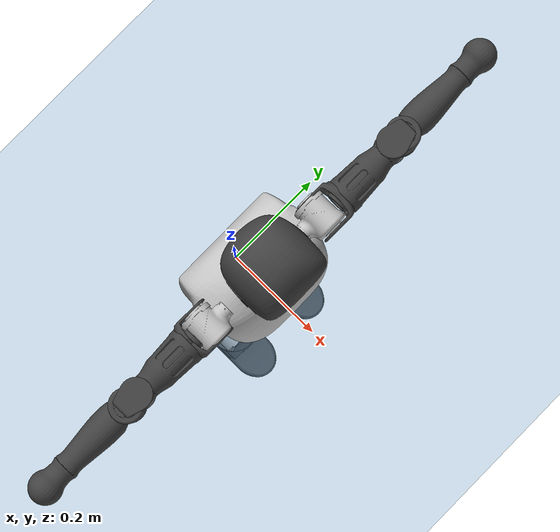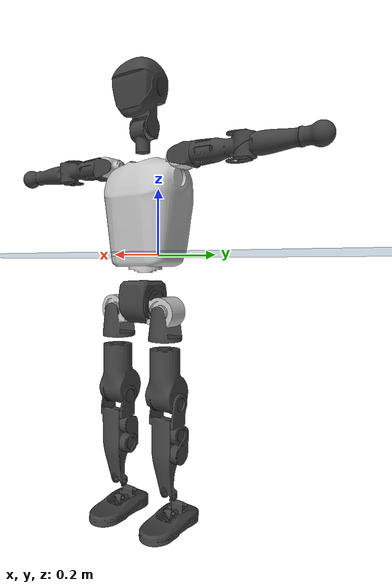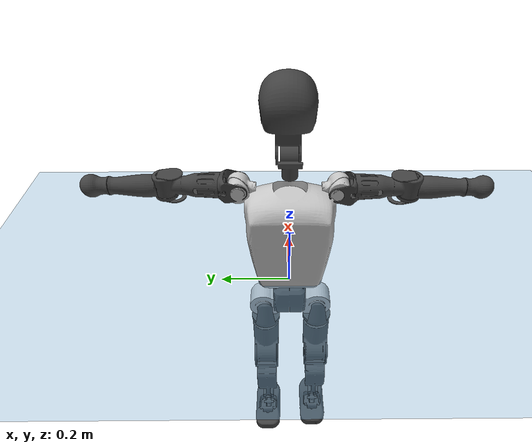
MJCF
<mujoco model="T1">
  <compiler angle="radian" assetdir="assets" balanceinertia="true" inertiafromgeom="false"/>

  <option timestep="0.005" density="1.2" viscosity="2e-05"/>

  <size nkey="1"/>

  <visual>
    <quality shadowsize="8192"/>
    <map shadowclip="0.5"/>
  </visual>

  <default>
    <default class="/">
      <joint armature="0.01" damping="0.01" frictionloss="0.1"/>
      <geom contype="0" conaffinity="0" group="1" solref="-1000 -80"/>
      <site size="0.01 0.005 0.005" group="5"/>
      <general forcelimited="true" biastype="affine" gainprm="25" biasprm="0 -25 -0.6"/>
      <default class="t1">
        <geom rgba="0.25 0.25 0.25 1"/>
        <default class="visual">
          <geom type="mesh" group="2"/>
        </default>
        <default class="collision">
          <geom group="3"/>
        </default>
        <default class="foot">
          <geom size="0.1115 0.05 0.015" type="box" condim="6" group="4" priority="1" solimp="0.015 1 0.015"/>
        </default>
        <default class="reward_collision_sphere">
          <geom group="5" rgba="1 0 0 1"/>
        </default>
      </default>
    </default>
  </default>

  <asset>
    <texture type="skybox" colorspace="auto" name="//unnamed_texture_0" builtin="gradient" rgb1="0.95 0.95 0.95" rgb2="0.95 0.95 0.95" width="100" height="600"/>
    <texture type="2d" colorspace="auto" name="texplane" builtin="checker" rgb1="0.345 0.575 0.748" rgb2="0.345 0.575 0.748" markrgb="1 1 1" width="512" height="512"/>
    <material name="MatPlane" class="/" texture="texplane" texuniform="true" texrepeat="2 2" specular="0.9"/>
    <mesh name="Trunk" class="/" file="Trunk.stl"/>
    <mesh name="H1" class="/" file="H1.stl"/>
    <mesh name="H2" class="/" file="H2.stl"/>
    <mesh name="AL1" class="/" file="AL1.stl"/>
    <mesh name="AL2" class="/" file="AL2.stl"/>
    <mesh name="AL3" class="/" file="AL3.stl"/>
    <mesh name="left_hand_link" class="/" file="left_hand_link.stl"/>
    <mesh name="AR1" class="/" file="AR1.stl"/>
    <mesh name="AR2" class="/" file="AR2.stl"/>
    <mesh name="AR3" class="/" file="AR3.stl"/>
    <mesh name="right_hand_link" class="/" file="right_hand_link.stl"/>
    <mesh name="Waist" class="/" file="Waist.stl"/>
    <mesh name="Hip_Pitch_Left" class="/" file="Hip_Pitch_Left.stl"/>
    <mesh name="Hip_Roll_Left" class="/" file="Hip_Roll_Left.stl"/>
    <mesh name="Hip_Yaw_Left" class="/" file="Hip_Yaw_Left.stl"/>
    <mesh name="Shank_Left" class="/" file="Shank_Left.stl"/>
    <mesh name="Ankle_Cross_Left" class="/" file="Ankle_Cross_Left.stl"/>
    <mesh name="left_foot_link" class="/" file="left_foot_link.stl"/>
    <mesh name="Hip_Pitch_Right" class="/" file="Hip_Pitch_Right.stl"/>
    <mesh name="Hip_Roll_Right" class="/" file="Hip_Roll_Right.stl"/>
    <mesh name="Hip_Yaw_Right" class="/" file="Hip_Yaw_Right.stl"/>
    <mesh name="Shank_Right" class="/" file="Shank_Right.stl"/>
    <mesh name="Ankle_Cross_Right" class="/" file="Ankle_Cross_Right.stl"/>
    <mesh name="right_foot_link" class="/" file="right_foot_link.stl"/>
  </asset>

  <worldbody>
    <geom name="floor" class="/" size="100 100 0.125" type="plane" group="0" material="MatPlane"/>
    <light name="toplight_shadow" class="/" pos="0 0 5" dir="0.0990148 0.0990148 -0.990148" type="directional" ambient="0.04 0.04 0.04" diffuse="0.55 0.55 0.55" specular="0.12 0.12 0.12"/>
    <light name="toplight_fill" class="/" pos="0 0 5" dir="0.0990148 0.0990148 -0.990148" type="directional" castshadow="false" ambient="0.04 0.04 0.04" diffuse="0.3 0.3 0.3" specular="0.08 0.08 0.08"/>
    <body name="trunk" childclass="t1" pos="0.000219533 -0.00148609 0.000931738" quat="1 -0.000115674 9.9266e-05 0.000185456">
      <inertial pos="0.0654595 -0.00246502 0.126693" quat="0.999964 0.00206635 -0.00819324 0.000833135" mass="14.4308" diaginertia="0.199295 0.0289502 0.13404"/>
      <joint name="//unnamed_joint_0" type="free" armature="0" damping="0" frictionloss="0"/>
      <geom name="//unnamed_geom_1" class="visual" rgba="0.76 0.76 0.76 1" mesh="Trunk"/>
      <geom name="//unnamed_geom_2" class="collision" size="0.0803605 0.107147 0.160721" pos="0.0712765 0 0.144229" type="box"/>
      <geom name="//unnamed_geom_3" class="reward_collision_sphere" size="0.123219" pos="0.0712765 0 0.120191"/>
      <geom name="//unnamed_geom_4" class="reward_collision_sphere" size="0.0160721" pos="0.0712765 0.0700884 0"/>
      <geom name="//unnamed_geom_5" class="reward_collision_sphere" size="0.0160721" pos="0.0712765 -0.0700884 0"/>
      <geom name="//unnamed_geom_6" class="reward_collision_sphere" size="0.0160721" pos="0.0712765 0.0882289 0.216344"/>
      <geom name="//unnamed_geom_7" class="reward_collision_sphere" size="0.0160721" pos="0.0712765 -0.0882289 0.216344"/>
      <site name="imu" pos="-0.00102103 -0.000327135 0.000409942" size="0.0107147"/>
      <camera name="track" pos="0 -1.64914 0" quat="0.707107 0.707107 0 0" mode="trackcom"/>
      <camera name="ego_camera" pos="0.144929 0 0.504802" quat="-0.5 -0.5 0.5 0.5"/>
      <body name="H1" pos="0.0749927 0.000382703 0.295107" quat="1 0.000407537 0.000107596 -0.000437588">
        <inertial pos="-0.00129463 -0.0030731 0.0689128" quat="0.765598 -0.0121139 0.000259738 0.643205" mass="0.556988" diaginertia="0.000564789 8.78493e-05 0.000379249"/>
        <joint name="AAHead_yaw" pos="0 0 0" axis="0.00495661 -0.011401 0.999923" range="-1.57254 1.58068" armature="0.00910074" damping="0.0110858" frictionloss="0.0940051"/>
        <geom name="//unnamed_geom_8" class="visual" mesh="H1"/>
        <body name="H2" pos="-0.00277053 0.00479583 0.0715791" quat="0.999999 0.000600668 -0.000101685 -0.00102496">
          <inertial pos="0.00773913 0.00237829 0.122482" quat="0.988983 0.105357 -0.0684915 -0.0782454" mass="0.802831" diaginertia="0.00496985 0.00077891 0.00431997"/>
          <joint name="Head_pitch" pos="0 0 0" axis="0.0117581 -0.999929 0.00211154" range="-1.19685 0.304357" armature="0.0111965" damping="0.0196323" frictionloss="0.117476"/>
          <geom name="//unnamed_geom_9" class="visual" mesh="H2"/>
          <geom name="//unnamed_geom_10" class="collision" size="0.0857179" pos="0.0118794 0 0.13221"/>
          <geom name="//unnamed_geom_11" class="reward_collision_sphere" size="0.0964326" pos="0.0237588 0 0.120191"/>
        </body>
      </body>
      <body name="AL1" pos="0.0725438 0.0905475 0.266142" quat="0.999999 0.00162068 0.000116589 0.000476401">
        <inertial pos="-0.00152678 0.0378461 -0.00119699" quat="0.504844 0.494403 -0.505169 0.495482" mass="0.641989" diaginertia="0.00316658 0.000506048 0.000737169"/>
        <joint name="Left_Shoulder_Pitch" pos="0 0 0" axis="-0.000110634 1 -0.000425415" range="-3.32789 1.15193" armature="0.0106472" damping="0.0223421" frictionloss="0.114356"/>
        <geom name="//unnamed_geom_12" class="visual" rgba="0.76 0.76 0.76 1" mesh="AL1"/>
        <body name="AL2" pos="0.00296738 0.0420298 0.00203715" quat="1 -0.000105498 0.000503047 3.69441e-05">
          <inertial pos="0.00278722 0.0285138 -0.00159602" quat="0.484797 0.507456 -0.497402 0.509952" mass="0.1952" diaginertia="0.000956955 0.000137002 0.000440284"/>
          <joint name="Left_Shoulder_Roll" pos="0 0 0" axis="-0.999917 0.00599565 0.0114183" stiffness="0.0209344" range="-1.5424 1.75457" armature="0.00884908" damping="0.00503762" frictionloss="0.108225"/>
          <geom name="//unnamed_geom_13" class="visual" mesh="AL2"/>
          <body name="AL3" pos="0.00314345 0.0508301 0.00148061" quat="0.999999 0.000434282 0.0006873 0.000956023">
            <inertial pos="-0.00219064 0.0733645 0.00181475" quat="0.703675 0.71051 0.0016064 -0.00373731" mass="1.31071" diaginertia="0.0301785 0.00492232 0.00158561"/>
            <joint name="Left_Elbow_Pitch" pos="0 0 0" axis="0.00598675 -0.999952 0.00773136" range="-2.19869 2.22493" armature="0.00805763" damping="0" frictionloss="0.107037"/>
            <geom name="//unnamed_geom_14" class="visual" mesh="AL3"/>
            <geom name="//unnamed_geom_15" class="collision" size="0.0321442 0.0803605" pos="0 0.0412285 0" quat="0.707105 0.707108 0 0" type="cylinder"/>
            <geom name="//unnamed_geom_16" class="reward_collision_sphere" size="0.038573"/>
            <body name="left_hand_link" pos="-0.00214337 0.12422 -3.38757e-05" quat="0.999999 0.00019875 -0.00110046 -0.00129009">
              <inertial pos="0.00359105 0.0925955 0.00130107" quat="0.705096 0.70901 0.0027526 0.0117287" mass="0.406391" diaginertia="0.0198205 0.00317928 0.00052366"/>
              <joint name="Left_Elbow_Yaw" pos="0 0 0" axis="-0.0061229 0.00253428 0.999978" stiffness="0.00200116" range="-2.45085 0.0790194" armature="0.00955187" damping="0.0202258" frictionloss="0.104619"/>
              <geom name="//unnamed_geom_17" class="visual" mesh="left_hand_link"/>
              <geom name="//unnamed_geom_18" class="collision" size="0.0321442 0.0937539" pos="0 0.107194 0" quat="0.707105 0.707108 0 0" type="cylinder"/>
              <geom name="//unnamed_geom_19" class="reward_collision_sphere" size="0.0535737"/>
              <geom name="//unnamed_geom_20" class="reward_collision_sphere" size="0.0375016" pos="0 0.0907026 0"/>
              <geom name="//unnamed_geom_21" class="reward_collision_sphere" size="0.0375016" pos="0 0.177282 0"/>
            </body>
          </body>
        </body>
      </body>
      <body name="AR1" pos="0.0700684 -0.0844051 0.266289" quat="0.999999 -0.00105815 0.00103433 3.60574e-05">
        <inertial pos="-0.00126171 -0.0324637 -0.0023446" quat="0.503654 0.498864 -0.503356 0.494064" mass="0.686236" diaginertia="0.00323202 0.000498973 0.000769345"/>
        <joint name="Right_Shoulder_Pitch" pos="0 0 0" axis="0.00788148 -0.999969 0.000657409" stiffness="0.0207364" range="-1.23543 3.28182" armature="0.00970375" damping="0" frictionloss="0.0980186"/>
        <geom name="//unnamed_geom_22" class="visual" rgba="0.76 0.76 0.76 1" mesh="AR1"/>
        <body name="AR2" pos="-0.00399769 -0.0376213 -0.000758414" quat="0.999999 0.000758362 0.000942829 -2.52665e-05">
          <inertial pos="0.0041939 -0.0306054 -0.00175899" quat="0.513864 0.488872 -0.51629 0.479993" mass="0.203076" diaginertia="0.000948696 0.000127419 0.000428664"/>
          <joint name="Right_Shoulder_Roll" pos="0 0 0" axis="-0.999953 -0.00951431 0.00208186" range="-1.69062 1.62228" armature="0.0103179" damping="0.0153137" frictionloss="0.0821373"/>
          <geom name="//unnamed_geom_23" class="visual" mesh="AR2"/>
          <body name="AR3" pos="0.000577511 -0.0474979 0.00473401" quat="1 5.96806e-05 5.30981e-05 8.52372e-05">
            <inertial pos="0.000425216 -0.0678046 -0.00180428" quat="0.705164 0.70899 -0.00452571 -0.0075604" mass="1.24161" diaginertia="0.0300465 0.00467259 0.00150341"/>
            <joint name="Right_Elbow_Pitch" pos="0 0 0" axis="0.0100373 0.999944 0.00346084" stiffness="0.0010742" range="-2.22736 2.25103" armature="0.0122001" damping="0.0156591" frictionloss="0.109184"/>
            <geom name="//unnamed_geom_24" class="visual" mesh="AR3"/>
            <geom name="//unnamed_geom_25" class="collision" size="0.0321442 0.0803605" pos="0 -0.0412285 0" quat="0.707105 0.707108 0 0" type="cylinder"/>
            <geom name="//unnamed_geom_26" class="reward_collision_sphere" size="0.038573"/>
            <body name="right_hand_link" pos="-0.00149086 -0.122037 -0.00176376" quat="1 8.16442e-05 0.000263548 -0.000530243">
              <inertial pos="0.000963096 -0.0921817 -0.00195525" quat="0.706553 0.707659 0.000791709 0.000344904" mass="0.383232" diaginertia="0.0185688 0.00307325 0.000525966"/>
              <joint name="Right_Elbow_Yaw" pos="0 0 0" axis="-0.000368003 7.26879e-05 1" stiffness="0.00532295" range="-0.0140489 2.4484" armature="0.00951461" damping="0.0265721" frictionloss="0.105105"/>
              <geom name="//unnamed_geom_27" class="visual" mesh="right_hand_link"/>
              <geom name="//unnamed_geom_28" class="collision" size="0.0321442 0.0937539" pos="0 -0.107194 0" quat="0.707105 0.707108 0 0" type="cylinder"/>
              <geom name="//unnamed_geom_29" class="reward_collision_sphere" size="0.0535737"/>
              <geom name="//unnamed_geom_30" class="reward_collision_sphere" size="0.0375016" pos="0 -0.0907026 0"/>
              <geom name="//unnamed_geom_31" class="reward_collision_sphere" size="0.0375016" pos="0 -0.177282 0"/>
            </body>
          </body>
        </body>
      </body>
      <body name="Waist" pos="0.0746151 0.000516265 -0.142538" quat="1 -0.000214827 0.000112024 0.000502011">
        <inertial pos="0.00527226 -0.00290819 0.0113044" quat="0.982899 0.00179681 -0.184009 -0.00685146" mass="3.35811" diaginertia="0.0137578 0.00210355 0.0127023"/>
        <joint name="Waist" pos="0 0 0" axis="-0.0114523 0.000856098 0.999934" range="-1.52443 1.61682" armature="0.0106003" damping="0.0114229" frictionloss="0.0970343"/>
        <geom name="//unnamed_geom_32" class="visual" mesh="Waist"/>
        <body name="Hip_Pitch_Left" pos="0.00131301 0.0850106 -0.00188503" quat="1 -8.83049e-05 0.000670067 -0.0002149">
          <inertial pos="0.000397817 -0.0078756 -0.022886" quat="0.977679 0.209278 0.0184106 0.0026611" mass="1.30001" diaginertia="0.00430092 0.000543525 0.00326024"/>
          <joint name="Left_Hip_Pitch" pos="0 0 0" axis="-0.0129512 0.999712 -0.020228" stiffness="0.0146075" range="-1.82294 1.50003" armature="0.0113688" damping="0.0183671" frictionloss="0.107712"/>
          <geom name="//unnamed_geom_33" class="visual" rgba="0.76 0.76 0.76 1" mesh="Hip_Pitch_Left"/>
          <body name="Hip_Roll_Left" pos="-0.00201606 -0.00516412 -0.0258683" quat="0.999997 0.000656277 0.00165669 -0.00136094">
            <inertial pos="0.00247074 -0.000766102 -0.0623673" quat="0.701949 -0.0162273 -0.00668096 0.712011" mass="0.481518" diaginertia="0.0041913 0.00061042 0.00135087"/>
            <joint name="Left_Hip_Roll" pos="0 0 0" axis="-0.999836 -0.0042702 -0.0175813" range="-1.52781 0.209769" armature="0.00986932" damping="0" frictionloss="0.0941222"/>
            <geom name="//unnamed_geom_34" class="visual" mesh="Hip_Roll_Left"/>
            <geom name="//unnamed_geom_35" class="reward_collision_sphere" size="0.058931"/>
            <body name="Hip_Yaw_Left" pos="0.00283959 0.00188618 -0.100971" quat="1 -4.76388e-05 0.000154804 0.000136976">
              <inertial pos="-0.00784296 0.00257586 -0.106739" quat="0.702838 -0.0203924 -0.0262311 0.710574" mass="2.68202" diaginertia="0.0619307 0.00968753 0.00670635"/>
              <joint name="Left_Hip_Yaw" pos="0 0 0" axis="-0.00508189 0.00160587 -0.999986" range="-0.999659 0.983274" armature="0.0107751" damping="0.0169968" frictionloss="0.114081"/>
              <geom name="//unnamed_geom_36" class="visual" mesh="Hip_Yaw_Left"/>
              <geom name="//unnamed_geom_37" class="collision" size="0.0535737 0.0857179" type="cylinder"/>
              <body name="Shank_Left" pos="-0.018315 0.00225869 -0.160608" quat="1 1.9526e-05 0.000108322 -0.000202685">
                <inertial pos="-0.00895966 0.00123273 -0.150836" quat="0.997266 0.00571919 -0.0287153 0.0678445" mass="2.1798" diaginertia="0.0832485 0.0133506 0.00487001"/>
                <joint name="Left_Knee_Pitch" pos="0 0 0" axis="-0.000911398 0.999999 0.000611572" stiffness="0.00583208" range="0.043449 2.30916" armature="0.00951315" damping="0.00379511" frictionloss="0.0933656"/>
                <geom name="//unnamed_geom_38" class="visual" mesh="Shank_Left"/>
                <geom name="//unnamed_geom_39" class="collision" size="0.0535737 0.0803605" pos="0 0 -0.144229" type="cylinder"/>
                <geom name="//unnamed_geom_40" class="reward_collision_sphere" size="0.0696458"/>
                <body name="Ankle_Cross_Left" pos="-0.00288723 -0.000489038 -0.33554" quat="0.999999 -0.000519822 -0.0010938 -6.00377e-05">
                  <inertial pos="-0.00607061 0.0041793 -0.0114186" quat="0.443609 0.549007 0.553166 0.442504" mass="0.0899829" diaginertia="6.90257e-05 9.54764e-06 2.83709e-05"/>
                  <joint name="Left_Ankle_Pitch" pos="0 0 0" axis="-0.000502873 1 5.17067e-05" range="-0.834884 0.39841" armature="0.00935091" damping="0.00518698" frictionloss="0.113814"/>
                  <geom name="//unnamed_geom_41" class="visual" mesh="Ankle_Cross_Left"/>
                  <body name="left_foot_link" pos="0.000965674 0.00353852 -0.0162451" quat="1 -2.94452e-05 -0.000223268 0.000363673">
                    <inertial pos="-0.00250135 -0.000552625 -0.015342" quat="-0.0117682 0.621434 -0.00521107 0.783361" mass="0.828794" diaginertia="0.0059845 0.000905397 0.00516038"/>
                    <joint name="Left_Ankle_Roll" pos="0 0 0" axis="-0.999999 0.00117673 -0.000214992" range="-0.432147 0.450749" armature="0.0120361" damping="0" frictionloss="0.11051"/>
                    <geom name="//unnamed_geom_42" class="visual" mesh="left_foot_link"/>
                    <geom name="left_foot" class="foot" size="0.0711862 0.0551168 0.018543" pos="0.0118794 0 -0.0180286"/>
                    <geom name="//unnamed_geom_44" class="reward_collision_sphere" size="0.0557166" pos="0.0118794 0 -0.0180286"/>
                    <geom name="//unnamed_geom_45" class="reward_collision_sphere" size="0.0321442" pos="0.112854 -0.0189651 -0.0180286"/>
                    <geom name="//unnamed_geom_46" class="reward_collision_sphere" size="0.0321442" pos="-0.0831559 -0.0189651 -0.0180286"/>
                    <site name="left_foot" class="foot" pos="0.0118794 0 -0.0180286" size="0.0107147"/>
                  </body>
                </body>
              </body>
            </body>
          </body>
        </body>
        <body name="Hip_Pitch_Right" pos="0.000969756 -0.0903587 -0.000126497" quat="0.999998 -0.000581883 0.00155865 0.00130385">
          <inertial pos="-0.00177193 0.0112974 -0.0219194" quat="0.973664 -0.227214 0.0173041 -0.00725165" mass="1.31353" diaginertia="0.0044304 0.000583214 0.0031526"/>
          <joint name="Right_Hip_Pitch" pos="0 0 0" axis="-0.00295767 -0.999965 0.00780545" range="-1.56438 1.77876" armature="0.00982131" damping="0.00430028" frictionloss="0.0876711"/>
          <geom name="//unnamed_geom_47" class="visual" rgba="0.76 0.76 0.76 1" mesh="Hip_Pitch_Right"/>
          <body name="Hip_Roll_Right" pos="0.00280725 -0.00311056 -0.026429" quat="1 1.97081e-06 6.89427e-07 4.89742e-06">
            <inertial pos="0.00403651 -0.00426231 -0.0607907" quat="0.712962 -0.00447167 -0.00167367 0.701187" mass="0.471858" diaginertia="0.00406338 0.000581433 0.0012978"/>
            <joint name="Right_Hip_Roll" pos="0 0 0" axis="-0.99994 0.00939714 0.00562125" stiffness="0.0039929" range="-0.227972 1.58049" armature="0.0117292" damping="0.0113824" frictionloss="0.116748"/>
            <geom name="//unnamed_geom_48" class="visual" mesh="Hip_Roll_Right"/>
            <geom name="//unnamed_geom_49" class="reward_collision_sphere" size="0.058931"/>
            <body name="Hip_Yaw_Right" pos="0.00267049 -0.00101833 -0.102253" quat="1 -3.85697e-05 -0.000181864 -0.000199991">
              <inertial pos="-0.00790385 -0.000251215 -0.104611" quat="0.715012 -0.0333241 -0.0340882 0.697485" mass="2.77741" diaginertia="0.0600291 0.00981463 0.00638111"/>
              <joint name="Right_Hip_Yaw" pos="0 0 0" axis="-0.0115048 0.00413306 -0.999925" range="-1.06946 1.03126" armature="0.0131174" damping="0.00554183" frictionloss="0.0909987"/>
              <geom name="//unnamed_geom_50" class="visual" mesh="Hip_Yaw_Right"/>
              <geom name="//unnamed_geom_51" class="collision" size="0.0535737 0.0857179" type="cylinder"/>
              <body name="Shank_Right" pos="-0.0128919 -0.00386762 -0.160706" quat="0.999999 -9.31473e-05 -0.000980332 0.00069148">
                <inertial pos="-0.00823354 -0.000644452 -0.151131" quat="0.99926 0.000105509 -0.024529 -0.0296167" mass="2.22842" diaginertia="0.0822744 0.0131404 0.00463198"/>
                <joint name="Right_Knee_Pitch" pos="0 0 0" axis="0.00356846 -0.99997 -0.00686682" range="-2.37192 0.023568" armature="0.00964623" damping="0.00610342" frictionloss="0.0949783"/>
                <geom name="//unnamed_geom_52" class="visual" mesh="Shank_Right"/>
                <geom name="//unnamed_geom_53" class="collision" size="0.0535737 0.0803605" pos="0 0 -0.144229" type="cylinder"/>
                <geom name="//unnamed_geom_54" class="reward_collision_sphere" size="0.0696458"/>
                <body name="Ankle_Cross_Right" pos="0.00191648 0.00132522 -0.333635" quat="0.999997 -0.00104967 -0.000676433 -0.00213967">
                  <inertial pos="-0.0067582 -0.00181607 -0.0104621" quat="0.447072 0.547947 0.5533 0.440159" mass="0.0903371" diaginertia="7.08151e-05 9.81444e-06 2.89806e-05"/>
                  <joint name="Right_Ankle_Pitch" pos="0 0 0" axis="-0.0138 -0.999878 -0.00725755" range="-0.317974 0.88542" armature="0.0112791" damping="0.00328376" frictionloss="0.0961702"/>
                  <geom name="//unnamed_geom_55" class="visual" mesh="Ankle_Cross_Right"/>
                  <body name="right_foot_link" pos="-0.000396061 0.00194213 -0.0159178" quat="0.999999 -0.000336259 -0.000560138 0.000811455">
                    <inertial pos="-0.00126254 0.00265831 -0.00953544" quat="-0.0104679 0.625221 -0.00485668 0.780363" mass="0.820263" diaginertia="0.00650669 0.000915688 0.00550414"/>
                    <joint name="Right_Ankle_Roll" pos="0 0 0" axis="-0.999998 -0.00107588 -0.00174454" range="-0.539074 0.442262" armature="0.00979703" damping="0.00183044" frictionloss="0.108014"/>
                    <geom name="//unnamed_geom_56" class="visual" mesh="right_foot_link"/>
                    <geom name="right_foot" class="foot" size="0.0760528 0.0529091 0.0173664" pos="0.0118794 0 -0.0180286"/>
                    <geom name="//unnamed_geom_58" class="reward_collision_sphere" size="0.0428589"/>
                    <geom name="//unnamed_geom_59" class="reward_collision_sphere" size="0.0321442" pos="0.0118794 0 -0.0180286"/>
                    <geom name="//unnamed_geom_60" class="reward_collision_sphere" size="0.0321442" pos="0.112854 0.0189651 -0.0180286"/>
                    <geom name="//unnamed_geom_61" class="reward_collision_sphere" size="0.0321442" pos="-0.0831559 0.0189651 -0.0180286"/>
                    <site name="right_foot" class="foot" pos="0.0118794 0 -0.0180286" size="0.0107147"/>
                  </body>
                </body>
              </body>
            </body>
          </body>
        </body>
      </body>
    </body>
  </worldbody>

  <contact>
    <pair class="/" geom1="floor" geom2="left_foot" name="//unnamed_contact_0"/>
    <pair class="/" geom1="floor" geom2="right_foot" name="//unnamed_contact_1"/>
  </contact>

  <actuator>
    <general name="AAHead_yaw" class="/" joint="AAHead_yaw" forcerange="-7.26819 7.26819" gainprm="25.7594" biasprm="0 -25.7594 -0.580703"/>
    <general name="Head_pitch" class="/" joint="Head_pitch" forcerange="-7.50958 7.50958" gainprm="25.7594" biasprm="0 -25.7594 -0.580703"/>
    <general name="Left_Shoulder_Pitch" class="/" joint="Left_Shoulder_Pitch" forcerange="-17.2279 17.2279" gainprm="25.7594" biasprm="0 -25.7594 -0.580703"/>
    <general name="Left_Shoulder_Roll" class="/" joint="Left_Shoulder_Roll" forcerange="-17.8134 17.8134" gainprm="25.7594" biasprm="0 -25.7594 -0.580703"/>
    <general name="Left_Elbow_Pitch" class="/" joint="Left_Elbow_Pitch" forcerange="-18.6131 18.6131" gainprm="25.7594" biasprm="0 -25.7594 -0.580703"/>
    <general name="Left_Elbow_Yaw" class="/" joint="Left_Elbow_Yaw" forcerange="-19.1381 19.1381" gainprm="25.7594" biasprm="0 -25.7594 -0.580703"/>
    <general name="Right_Shoulder_Pitch" class="/" joint="Right_Shoulder_Pitch" forcerange="-19.2863 19.2863" gainprm="25.7594" biasprm="0 -25.7594 -0.580703"/>
    <general name="Right_Shoulder_Roll" class="/" joint="Right_Shoulder_Roll" forcerange="-17.5473 17.5473" gainprm="25.7594" biasprm="0 -25.7594 -0.580703"/>
    <general name="Right_Elbow_Pitch" class="/" joint="Right_Elbow_Pitch" forcerange="-21.4364 21.4364" gainprm="25.7594" biasprm="0 -25.7594 -0.580703"/>
    <general name="Right_Elbow_Yaw" class="/" joint="Right_Elbow_Yaw" forcerange="-17.2015 17.2015" gainprm="25.7594" biasprm="0 -25.7594 -0.580703"/>
    <general name="Waist" class="/" joint="Waist" forcerange="-34.7717 34.7717" gainprm="25.7594" biasprm="0 -25.7594 -0.580703"/>
    <general name="Left_Hip_Pitch" class="/" joint="Left_Hip_Pitch" forcerange="-43.8593 43.8593" gainprm="25.7594" biasprm="0 -25.7594 -0.580703"/>
    <general name="Left_Hip_Roll" class="/" joint="Left_Hip_Roll" forcerange="-32.4349 32.4349" gainprm="25.7594" biasprm="0 -25.7594 -0.580703"/>
    <general name="Left_Hip_Yaw" class="/" joint="Left_Hip_Yaw" forcerange="-29.2342 29.2342" gainprm="25.7594" biasprm="0 -25.7594 -0.580703"/>
    <general name="Left_Knee_Pitch" class="/" joint="Left_Knee_Pitch" forcerange="-67.3545 67.3545" gainprm="25.7594" biasprm="0 -25.7594 -0.580703"/>
    <general name="Left_Ankle_Pitch" class="/" joint="Left_Ankle_Pitch" forcerange="-18.0953 18.0953" gainprm="25.7594" biasprm="0 -25.7594 -0.580703"/>
    <general name="Left_Ankle_Roll" class="/" joint="Left_Ankle_Roll" forcerange="-19.0209 19.0209" gainprm="25.7594" biasprm="0 -25.7594 -0.580703"/>
    <general name="Right_Hip_Pitch" class="/" joint="Right_Hip_Pitch" forcerange="-47.4384 47.4384" gainprm="25.7594" biasprm="0 -25.7594 -0.580703"/>
    <general name="Right_Hip_Roll" class="/" joint="Right_Hip_Roll" forcerange="-33.7791 33.7791" gainprm="25.7594" biasprm="0 -25.7594 -0.580703"/>
    <general name="Right_Hip_Yaw" class="/" joint="Right_Hip_Yaw" forcerange="-28.5435 28.5435" gainprm="25.7594" biasprm="0 -25.7594 -0.580703"/>
    <general name="Right_Knee_Pitch" class="/" joint="Right_Knee_Pitch" forcerange="-69.8249 69.8249" gainprm="25.7594" biasprm="0 -25.7594 -0.580703"/>
    <general name="Right_Ankle_Pitch" class="/" joint="Right_Ankle_Pitch" forcerange="-21.959 21.959" gainprm="25.7594" biasprm="0 -25.7594 -0.580703"/>
    <general name="Right_Ankle_Roll" class="/" joint="Right_Ankle_Roll" forcerange="-16.6283 16.6283" gainprm="25.7594" biasprm="0 -25.7594 -0.580703"/>
  </actuator>

  <sensor>
    <gyro site="imu" name="imu_angular_velocity"/>
    <velocimeter site="imu" name="imu_linear_velocity"/>
    <framelinvel objtype="site" objname="left_foot" name="left_foot_global_linear_velocity"/>
    <framelinvel objtype="site" objname="right_foot" name="right_foot_global_linear_velocity"/>
  </sensor>

  <keyframe>
    <key name="home" qpos="0 0 0.6385 1 0 0 0 0 0 0 1.4 0 -0.4 0 -1.4 0 0.4 0 -0.4 0 0 0.8 -0.4 0 0.4 0 0 -0.8 0.4 0"/>
  </keyframe>
</mujoco>
